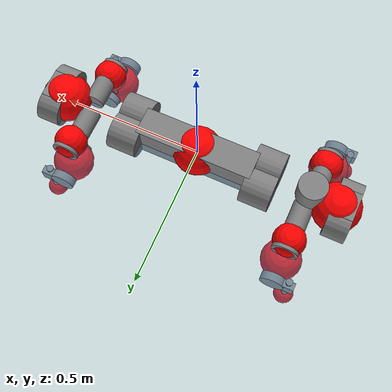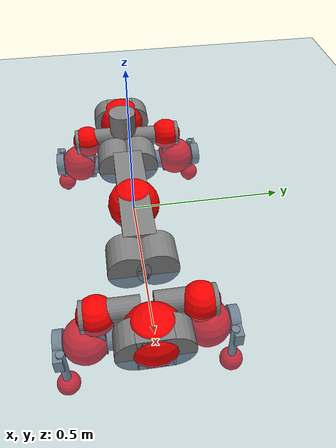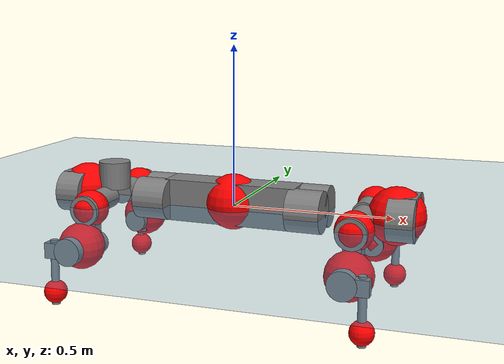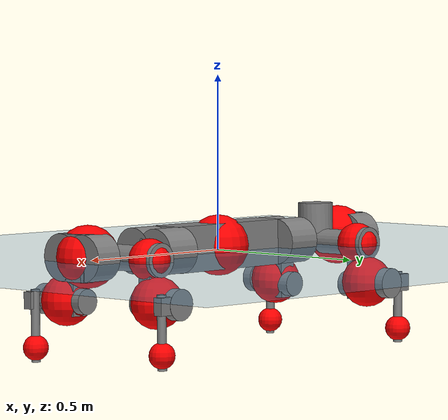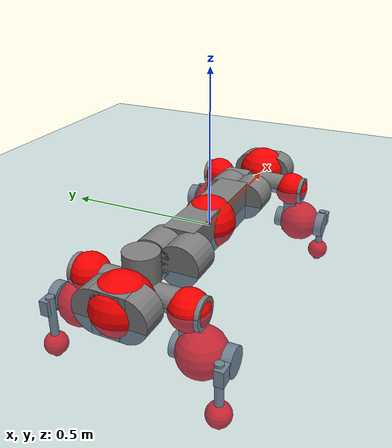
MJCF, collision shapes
<mujoco model="anymal_c">
  <compiler angle="radian" assetdir="assets" balanceinertia="true" inertiafromgeom="false"/>

  <option timestep="0.005" density="1.2" viscosity="2e-05"/>

  <size nkey="1"/>

  <visual>
    <quality shadowsize="8192"/>
    <map shadowclip="0.5"/>
  </visual>

  <default>
    <default class="/">
      <material specular="0" shininess="0.25"/>
      <geom contype="0" conaffinity="0" group="1" solref="-1000 -80"/>
      <site size="0.01 0.005 0.005" group="5"/>
      <general forcelimited="true" forcerange="-80 80" biastype="affine" gainprm="80" biasprm="0 -80 -2"/>
      <default class="anymal_c">
        <joint armature="0.01" damping="0.01" frictionloss="0.1"/>
        <default class="visual">
          <geom type="mesh" group="2"/>
          <default class="visual_zflip"/>
        </default>
        <default class="collision">
          <geom type="cylinder" group="3"/>
          <default class="foot">
            <geom size="0.03 0 0" type="sphere" condim="6" priority="1" friction="0.8 0.02 0.01" solimp="0.015 1 0.03"/>
          </default>
        </default>
      </default>
      <default class="reward_collision_sphere">
        <geom group="5" rgba="1 0 0 1"/>
      </default>
    </default>
  </default>

  <asset>
    <texture type="skybox" colorspace="auto" name="//unnamed_texture_0" builtin="gradient" rgb1="0.95 0.95 0.95" rgb2="0.95 0.95 0.95" width="100" height="600"/>
    <texture type="2d" colorspace="auto" name="texplane" builtin="checker" rgb1="0.345 0.575 0.748" rgb2="0.345 0.575 0.748" markrgb="1 1 1" width="512" height="512"/>
    <texture type="2d" colorspace="linear" name="base" file="base.png"/>
    <texture type="2d" colorspace="linear" name="top_shell" file="top_shell.png"/>
    <texture type="2d" colorspace="linear" name="bottom_shell" file="bottom_shell.png"/>
    <texture type="2d" colorspace="linear" name="remote" file="remote.png"/>
    <texture type="2d" colorspace="linear" name="hatch" file="hatch.png"/>
    <texture type="2d" colorspace="linear" name="handle" file="handle.png"/>
    <texture type="2d" colorspace="linear" name="face" file="face.png"/>
    <texture type="2d" colorspace="linear" name="battery" file="battery.png"/>
    <texture type="2d" colorspace="linear" name="lidar_cage" file="lidar_cage.png"/>
    <texture type="2d" colorspace="linear" name="depth_camera" file="depth_camera.png"/>
    <texture type="2d" colorspace="linear" name="wide_angle_camera" file="wide_angle_camera.png"/>
    <texture type="2d" colorspace="linear" name="lidar" file="lidar.png"/>
    <texture type="2d" colorspace="linear" name="drive" file="drive.png"/>
    <texture type="2d" colorspace="linear" name="hip_l" file="hip_l.png"/>
    <texture type="2d" colorspace="linear" name="shank_l" file="shank_l.png"/>
    <texture type="2d" colorspace="linear" name="foot" file="foot.png"/>
    <texture type="2d" colorspace="linear" name="thigh" file="thigh.png"/>
    <texture type="2d" colorspace="linear" name="shank_r" file="shank_r.png"/>
    <texture type="2d" colorspace="linear" name="hip_r" file="hip_r.png"/>
    <material name="MatPlane" class="/" texture="texplane" texuniform="true" texrepeat="2 2" specular="0.9" shininess="0.5"/>
    <material name="black_plastic" class="/" rgba="0.007 0.007 0.007 1"/>
    <material name="green" class="/" rgba="0.052 0.178 0.033 1"/>
    <material name="red" class="/" rgba="0.178 0.006 0.005 1"/>
    <material name="yellow" class="/" rgba="0.178 0.119 0.006 1"/>
    <material name="lwl" class="/" rgba="0.8 0.8 0.8 1"/>
    <material name="base" class="/" texture="base"/>
    <material name="top_shell" class="/" texture="top_shell"/>
    <material name="bottom_shell" class="/" texture="bottom_shell"/>
    <material name="hip_l" class="/" texture="hip_l"/>
    <material name="thigh" class="/" texture="thigh"/>
    <material name="shank_l" class="/" texture="shank_l"/>
    <material name="foot" class="/" texture="foot"/>
    <material name="hip_r" class="/" texture="hip_r"/>
    <material name="shank" class="/" texture="shank_r"/>
    <material name="hatch" class="/" texture="hatch"/>
    <material name="remote" class="/" texture="remote"/>
    <material name="handle" class="/" texture="handle"/>
    <material name="face" class="/" texture="face"/>
    <material name="depth_camera" class="/" texture="depth_camera"/>
    <material name="wide_angle_camera" class="/" texture="wide_angle_camera"/>
    <material name="battery" class="/" texture="battery"/>
    <material name="lidar_cage" class="/" texture="lidar_cage"/>
    <material name="lidar" class="/" texture="lidar"/>
    <material name="drive" class="/" texture="drive"/>
    <mesh name="base_0" class="/" file="base_0.obj"/>
    <mesh name="base_1" class="/" file="base_1.obj"/>
    <mesh name="base_2" class="/" file="base_2.obj"/>
    <mesh name="base_3" class="/" file="base_3.obj"/>
    <mesh name="base_4" class="/" file="base_4.obj"/>
    <mesh name="base_5" class="/" file="base_5.obj"/>
    <mesh name="top_shell" class="/" file="top_shell.obj"/>
    <mesh name="bottom_shell" class="/" file="bottom_shell.obj"/>
    <mesh name="remote" class="/" file="remote.obj"/>
    <mesh name="handle" class="/" file="handle.obj"/>
    <mesh name="face" class="/" file="face.obj"/>
    <mesh name="wide_angle_camera" class="/" file="wide_angle_camera.obj"/>
    <mesh name="depth_camera" class="/" file="depth_camera.obj"/>
    <mesh name="battery" class="/" file="battery.obj"/>
    <mesh name="lidar_cage" class="/" file="lidar_cage.obj"/>
    <mesh name="lidar" class="/" file="lidar.obj"/>
    <mesh name="drive" class="/" file="drive.obj"/>
    <mesh name="hip_l" class="/" file="hip_l.obj"/>
    <mesh name="thigh" class="/" file="thigh.obj"/>
    <mesh name="shank_l" class="/" file="shank_l.obj"/>
    <mesh name="foot" class="/" file="foot.obj"/>
    <mesh name="hip_r" class="/" file="hip_r.obj"/>
    <mesh name="hatch" class="/" file="hatch.obj"/>
    <mesh name="shank_r" class="/" file="shank_r.obj"/>
  </asset>

  <worldbody>
    <geom name="floor" class="/" size="100 100 0.125" type="plane" group="0" material="MatPlane"/>
    <light name="toplight_shadow" class="/" pos="0 0 5" dir="0.0990148 0.0990148 -0.990148" type="directional" ambient="0.04 0.04 0.04" diffuse="0.55 0.55 0.55" specular="0.12 0.12 0.12"/>
    <light name="toplight_fill" class="/" pos="0 0 5" dir="0.0990148 0.0990148 -0.990148" type="directional" castshadow="false" ambient="0.04 0.04 0.04" diffuse="0.3 0.3 0.3" specular="0.08 0.08 0.08"/>
    <body name="trunk" childclass="anymal_c" pos="-0.00231352 0.000766299 0.014659" quat="0.999977 0.0039247 0.00287399 -0.00477945">
      <inertial pos="0.00130207 -0.0118083 0.0224656" quat="0.548375 0.466179 0.471422 0.509631" mass="6.69915" diaginertia="1.00789 0.0461194 0.00239697"/>
      <joint name="//unnamed_joint_0" type="free" armature="0" damping="0" frictionloss="0"/>
      <geom name="//unnamed_geom_1" class="visual" material="green" mesh="base_0"/>
      <geom name="//unnamed_geom_2" class="visual" material="yellow" mesh="base_1"/>
      <geom name="//unnamed_geom_3" class="visual" material="red" mesh="base_2"/>
      <geom name="//unnamed_geom_4" class="visual" material="black_plastic" mesh="base_3"/>
      <geom name="//unnamed_geom_5" class="visual" material="lwl" mesh="base_4"/>
      <geom name="//unnamed_geom_6" class="visual" material="base" mesh="base_5"/>
      <geom name="trunk_1" class="collision" size="0.210313 0.0507652 0.0652695" type="box"/>
      <geom name="trunk_2" class="collision" size="0.0652695 0.0525782" pos="0.247297 0.0430053 0" quat="0.707107 0 0.707107 0"/>
      <geom name="trunk_3" class="collision" size="0.0652695 0.0525782" pos="-0.247297 0.0430053 0" quat="0.707107 0 0.707107 0"/>
      <geom name="trunk_4" class="collision" size="0.0652695 0.0525782" pos="0.247297 -0.0430053 0" quat="0.707107 0 0.707107 0"/>
      <geom name="trunk_5" class="collision" size="0.0652695 0.0525782" pos="-0.247297 -0.0430053 0" quat="0.707107 0 0.707107 0"/>
      <geom name="//unnamed_geom_12" class="visual" material="top_shell" mesh="top_shell"/>
      <geom name="//unnamed_geom_13" class="visual" material="bottom_shell" mesh="bottom_shell"/>
      <geom name="//unnamed_geom_14" class="visual" material="remote" mesh="remote"/>
      <geom name="//unnamed_geom_15" class="visual" material="handle" mesh="handle"/>
      <geom name="//unnamed_geom_16" class="visual" pos="0.471286 0 0" quat="1 0 0 0" material="face" mesh="face"/>
      <geom name="trunk_6" class="collision" size="0.0398869 0.0507652 0.0652695" pos="0.533821 0 0" type="box"/>
      <geom name="//unnamed_geom_18" class="collision" size="0.0652695 0.0398869" pos="0.533821 0.0430053 0" quat="0.707107 0 0.707107 0"/>
      <geom name="//unnamed_geom_19" class="collision" size="0.0652695 0.0398869" pos="0.533821 -0.0430053 0" quat="0.707107 0 0.707107 0"/>
      <geom name="//unnamed_geom_20" class="visual" pos="0.524866 0 -0.00697271" quat="0.965926 0 0.258819 0" material="depth_camera" mesh="depth_camera"/>
      <geom name="//unnamed_geom_21" class="visual" pos="0.58328 0 0.00635163" material="wide_angle_camera" mesh="wide_angle_camera"/>
      <geom name="//unnamed_geom_22" class="visual_zflip" pos="-0.471286 0 0" quat="0 0 0 1" material="face" mesh="face"/>
      <geom name="trunk_7" class="collision" size="0.0398869 0.0507652 0.0652695" pos="-0.533821 0 0" quat="0 0 0 1" type="box"/>
      <geom name="//unnamed_geom_24" class="collision" size="0.0652695 0.0398869" pos="-0.533821 -0.0430053 0" quat="0 -0.707107 0 0.707107"/>
      <geom name="//unnamed_geom_25" class="collision" size="0.0652695 0.0398869" pos="-0.533821 0.0430053 0" quat="0 -0.707107 0 0.707107"/>
      <geom name="//unnamed_geom_26" class="visual" pos="-0.524866 0 -0.00697271" quat="0 -0.258819 0 0.965926" material="depth_camera" mesh="depth_camera"/>
      <geom name="//unnamed_geom_27" class="visual_zflip" pos="-0.58328 0 0.00635163" quat="0 0 0 1" material="wide_angle_camera" mesh="wide_angle_camera"/>
      <geom name="//unnamed_geom_28" class="visual" material="battery" mesh="battery"/>
      <geom name="//unnamed_geom_29" class="visual" pos="0 0.0400865 0.0177422" quat="0.683013 -0.183013 0.183013 0.683013" material="depth_camera" mesh="depth_camera"/>
      <geom name="//unnamed_geom_30" class="visual" pos="0 -0.0400865 0.0177422" quat="0.683013 0.183013 0.183013 -0.683013" material="depth_camera" mesh="depth_camera"/>
      <geom name="//unnamed_geom_31" class="visual" pos="-0.413867 0 0.0311854" quat="1 0 0 0" material="lidar_cage" mesh="lidar_cage"/>
      <geom name="trunk_8" class="collision" size="0.0507652 0.043513" pos="-0.413867 0 0.0566428"/>
      <geom name="//unnamed_geom_33" class="visual" pos="-0.413867 -0.00020533 0.0603341" quat="0.707107 0 0 -0.707107" material="lidar" mesh="lidar"/>
      <geom name="//unnamed_geom_34" class="visual" pos="0.340986 0.0638261 3.27875e-09" quat="0.258819 0.965926 0 0" material="drive" mesh="drive"/>
      <geom name="//unnamed_geom_35" class="visual" pos="0.340986 -0.0638261 -3.27875e-09" quat="0.258819 -0.965926 0 0" material="drive" mesh="drive"/>
      <geom name="//unnamed_geom_36" class="visual" pos="-0.340986 0.0638261 -3.27875e-09" quat="0 0 0.965926 -0.258819" material="drive" mesh="drive"/>
      <geom name="//unnamed_geom_37" class="visual" pos="-0.340986 -0.0638261 3.27875e-09" quat="0 0 -0.965926 -0.258819" material="drive" mesh="drive"/>
      <geom name="//unnamed_geom_38" class="visual" pos="0.131892 0 0.0309732" quat="1 0 0 0" material="hatch" mesh="hatch"/>
      <geom name="//unnamed_geom_39" class="reward_collision_sphere" size="0.0870261"/>
      <geom name="//unnamed_geom_40" class="reward_collision_sphere" size="0.0870261" pos="0.511649 0 0"/>
      <geom name="//unnamed_geom_41" class="reward_collision_sphere" size="0.0870261" pos="-0.511649 0 0"/>
      <site name="imu" pos="0.265752 -0.0384665 0.0757639" size="0.00725217"/>
      <camera name="track" pos="0 -1.22872 0" quat="0.707107 0.707107 0 0" mode="trackcom"/>
      <camera name="ego_camera" pos="0.511649 0 -0.0169716" quat="-0.5 -0.5 0.5 0.5"/>
      <body name="LF_HIP" pos="0.340511 0.0582359 -0.00658373" quat="0.258667 0.965967 0.000174776 -0.000369747">
        <inertial pos="0.0775273 -0.00813372 0.0106782" quat="-0.186148 0.674419 -0.131221 0.702345" mass="1.15871" diaginertia="0.0106854 0.000505787 4.97727e-05"/>
        <joint name="LF_HAA" pos="0 0 0" axis="0.998068 -0.015727 -0.0601152" stiffness="0.0525403" range="-0.73066 0.327181" armature="0.0074466" damping="0.0604735" frictionloss="0.0433031"/>
        <geom name="//unnamed_geom_42" class="visual" pos="0 0.000192874 -3.16794e-05" quat="0.258819 -0.965926 0 0" material="hip_l" mesh="hip_l"/>
        <geom name="//unnamed_geom_43" class="visual" pos="0.0681062 -0.0755764 -0.0422282" quat="0.183013 -0.683013 0.683013 0.183013" material="drive" mesh="drive"/>
        <geom name="//unnamed_geom_44" class="collision" size="0.0362609 0.0507652" pos="0.0681062 -0.00734765 -0.00292973" quat="-0.353553 -0.612372 0.612372 -0.353553"/>
        <body name="LF_THIGH" pos="0.0796557 -0.0517903 -0.0296063" quat="0.18312 -0.683047 0.683032 0.182707">
          <inertial pos="0.0349774 0.000740859 -0.103283" quat="0.994047 0.0191757 -0.0703975 0.0809185" mass="1.28591" diaginertia="0.0634492 0.00301896 7.62034e-05"/>
          <joint name="LF_HFE" pos="0 0 0" axis="0.999998 -0.000377764 0.0017316" stiffness="0.0258712" range="-2.97301 3.12643" armature="0.0105309" damping="0" frictionloss="0.0737511"/>
          <geom name="//unnamed_geom_45" class="visual" pos="0.0103984 1.63855e-05 0" quat="0.707107 0 0 -0.707107" material="thigh" mesh="thigh"/>
          <geom name="//unnamed_geom_46" class="collision" size="0.0471391 0.0290087" pos="0.0454799 0 0" quat="0.5 0.5 -0.5 -0.5"/>
          <geom name="//unnamed_geom_47" class="collision" size="0.0271956 0.0217565 0.102483" pos="0.03411 0 -0.0599582" quat="0.707107 0 0 -0.707107" type="box"/>
          <geom name="//unnamed_geom_48" class="visual" pos="0.114041 0 -0.120923" quat="1 0 0 0" material="drive" mesh="drive"/>
          <geom name="//unnamed_geom_49" class="collision" size="0.0362609 0.0507652" pos="0.0344511 0 -0.120923" quat="0.707107 0 0.707107 0"/>
          <geom name="//unnamed_geom_50" class="reward_collision_sphere" size="0.0580174" pos="0.028425 0 0"/>
          <body name="LF_SHANK" pos="0.10955 0.00201596 -0.116603" quat="1 0.000168684 6.63774e-05 0.000150821">
            <inertial pos="0.0220296 -0.0236554 -0.0327972" quat="0.993141 -0.114822 -0.00160117 -0.0220118" mass="0.227238" diaginertia="0.0226678 0.000794853 1.53366e-05"/>
            <joint name="LF_KFE" pos="0 0 0" axis="1 0.000340903 0.000665643" stiffness="0.00676023" range="-2.82876 2.96578" armature="0.00941419" damping="0.0271438" frictionloss="0.0179225"/>
            <geom name="//unnamed_geom_51" class="visual" pos="0.0033907 0.0180794 0" quat="0.707107 0 0 -0.707107" material="shank_l" mesh="shank_l"/>
            <geom name="LF_kfe_act" class="collision" size="0.043513 0.0145043" pos="0.02274 0 0" quat="0.5 0.5 -0.5 -0.5"/>
            <geom name="//unnamed_geom_53" class="collision" size="0.0416993 0.0244761 0.0137791" pos="0.02274 -0.0353252 0" quat="0.5 0.5 -0.5 -0.5" type="box"/>
            <geom name="//unnamed_geom_54" class="visual" pos="0.014837 -0.0482069 -0.143398" quat="0.382683 0 0 -0.92388" material="foot" mesh="foot"/>
            <geom name="LF_calf" class="collision" size="0.0126913 0.102438" pos="0.0148378 -0.0540331 -0.0716988" quat="0.707107 0 0 -0.707107"/>
            <geom name="LF_foot" class="foot" size="0.0289877" pos="0.0148378 -0.0540331 -0.133851" quat="0.707107 0 0 -0.707107"/>
            <geom name="//unnamed_geom_57" class="reward_collision_sphere" size="0.0725217" pos="-0.0568499 0 0"/>
            <geom name="//unnamed_geom_58" class="reward_collision_sphere" size="0.0362609" pos="0.0148378 -0.0540331 -0.133851"/>
            <site name="LF_foot" class="foot" pos="0.0148378 -0.0540331 -0.133851" quat="0.707107 0 0 -0.707107" size="0.00725217"/>
          </body>
        </body>
      </body>
      <body name="RF_HIP" pos="0.34941 -0.0654443 -0.00463007" quat="0.26158 -0.965157 0.000907819 -0.00690215">
        <inertial pos="0.0708876 0.0102159 -0.00567582" quat="0.127874 0.731446 0.111257 0.660498" mass="0.919776" diaginertia="0.0113875 0.000458789 4.66583e-05"/>
        <joint name="RF_HAA" pos="0 0 0" axis="0.999148 -0.0396854 0.0113461" stiffness="0.0597143" range="-0.199261 0.881417" armature="0.00586614" damping="0.0545585" frictionloss="0.0381041"/>
        <geom name="//unnamed_geom_59" class="visual" pos="0 -0.000192873 -3.16793e-05" quat="0.258819 0.965926 0 0" material="hip_r" mesh="hip_r"/>
        <geom name="//unnamed_geom_60" class="visual" pos="0.0681062 0.0755764 -0.0422282" quat="0.183013 0.683013 0.683013 -0.183013" material="drive" mesh="drive"/>
        <geom name="//unnamed_geom_61" class="collision" size="0.0362609 0.0507652" pos="0.0681062 0.00734765 -0.00292973" quat="-0.353553 0.612372 0.612372 0.353553"/>
        <body name="RF_THIGH" pos="0.068389 0.0533434 -0.0163641" quat="0.181771 0.682597 0.684527 -0.180122">
          <inertial pos="0.0425026 0.000248434 -0.0988051" quat="0.993879 0.0141973 -0.0804663 0.0743496" mass="0.995963" diaginertia="0.0563511 0.00295646 5.18347e-05"/>
          <joint name="RF_HFE" pos="0 0 0" axis="0.999998 -0.00122927 0.00161837" range="-3.10713 3.31139" armature="0.0101457" damping="0.0810746" frictionloss="0.113707"/>
          <geom name="//unnamed_geom_62" class="visual" pos="0.0103984 1.63855e-05 0" quat="0.707107 0 0 -0.707107" material="thigh" mesh="thigh"/>
          <geom name="//unnamed_geom_63" class="collision" size="0.0471391 0.0290087" pos="0.0454799 0 0" quat="0.5 0.5 0.5 0.5"/>
          <geom name="//unnamed_geom_64" class="collision" size="0.0271956 0.0217565 0.102483" pos="0.03411 0 -0.0599582" quat="0.707107 0 0 0.707107" type="box"/>
          <geom name="//unnamed_geom_65" class="visual" pos="0.114041 0 -0.120923" quat="1 0 0 0" material="drive" mesh="drive"/>
          <geom name="//unnamed_geom_66" class="collision" size="0.0362609 0.0507652" pos="0.0344511 0 -0.120923" quat="0.707107 0 0.707107 0"/>
          <geom name="//unnamed_geom_67" class="reward_collision_sphere" size="0.0580174" pos="0.028425 0 0"/>
          <body name="RF_SHANK" pos="0.128438 -0.00229239 -0.120267" quat="0.999998 0.000388566 0.000528933 0.00174351">
            <inertial pos="0.0107175 0.0509339 -0.0456427" quat="0.9981 0.0422395 -0.0134506 0.0427875" mass="0.271582" diaginertia="0.022852 0.000794812 2.00689e-05"/>
            <joint name="RF_KFE" pos="0 0 0" axis="0.999997 0.000289573 -0.00242662" stiffness="0.0191927" range="-3.12859 3.18575" armature="0.00757805" damping="0.0554336" frictionloss="0.100086"/>
            <geom name="//unnamed_geom_68" class="visual" pos="0.00339068 -0.0180793 0" quat="0.707107 0 0 0.707107" material="shank" mesh="shank_r"/>
            <geom name="RF_kfe_act" class="collision" size="0.043513 0.0145043" pos="0.02274 0 0" quat="0.5 0.5 0.5 0.5"/>
            <geom name="//unnamed_geom_70" class="collision" size="0.0416993 0.0244761 0.0137791" pos="0.02274 0.0353252 0" quat="0.5 0.5 0.5 0.5" type="box"/>
            <geom name="//unnamed_geom_71" class="visual" pos="0.0148387 0.0482069 -0.143398" quat="0.382683 0 0 0.92388" material="foot" mesh="foot"/>
            <geom name="RF_calf" class="collision" size="0.0126913 0.102438" pos="0.0148378 0.0540331 -0.0716988" quat="0.707107 0 0 0.707107"/>
            <geom name="RF_foot" class="foot" size="0.0323841" pos="0.0148378 0.0540331 -0.133851" quat="0.707107 0 0 0.707107"/>
            <geom name="//unnamed_geom_74" class="reward_collision_sphere" size="0.0725217" pos="-0.0568499 0 0"/>
            <geom name="//unnamed_geom_75" class="reward_collision_sphere" size="0.0362609" pos="0.0148378 0.0540331 -0.133851"/>
            <site name="RF_foot" class="foot" pos="0.0148378 0.0540331 -0.133851" quat="0.707107 0 0 0.707107" size="0.00725217"/>
          </body>
        </body>
      </body>
      <body name="LH_HIP" pos="-0.340696 0.0738471 -0.0102103" quat="0.00225389 0.000544797 0.965602 -0.260014">
        <inertial pos="0.0697465 0.0225096 0.0112134" quat="0.109796 0.686425 0.110429 0.710332" mass="1.20471" diaginertia="0.0134986 0.000438732 5.70933e-05"/>
        <joint name="LH_HAA" pos="0 0 0" axis="0.998061 0.0410744 -0.0467664" range="-0.238712 0.451893" armature="0.00278583" damping="0.0118846" frictionloss="0.0688219"/>
        <geom name="//unnamed_geom_76" class="visual" pos="0 -0.000192873 -3.16793e-05" quat="-0.258819 -0.965926 0 0" material="hip_r" mesh="hip_r"/>
        <geom name="//unnamed_geom_77" class="visual" pos="0.0681062 0.0755764 -0.0422282" quat="0.183013 0.683013 0.683013 -0.183013" material="drive" mesh="drive"/>
        <geom name="//unnamed_geom_78" class="collision" size="0.0362609 0.0507652" pos="0.0681062 0.00734765 -0.00292973" quat="-0.353553 0.612372 0.612372 0.353553"/>
        <body name="LH_THIGH" pos="0.0677507 0.0570096 -0.0320735" quat="0.188142 0.681992 0.682808 -0.182378">
          <inertial pos="0.0196089 0.0105948 -0.0889813" quat="0.992891 -0.00556859 -0.0805587 0.0874438" mass="0.947441" diaginertia="0.0381819 0.00202715 4.0329e-05"/>
          <joint name="LH_HFE" pos="0 0 0" axis="0.997078 -0.0172655 0.0744164" range="-2.95155 3.12234" armature="0.00634341" damping="0.0826574" frictionloss="0.0466539"/>
          <geom name="//unnamed_geom_79" class="visual" pos="0.0103984 1.63855e-05 0" quat="0.707107 0 0 -0.707107" material="thigh" mesh="thigh"/>
          <geom name="//unnamed_geom_80" class="collision" size="0.0471391 0.0290087" pos="0.0454799 0 0" quat="0.5 0.5 -0.5 -0.5"/>
          <geom name="//unnamed_geom_81" class="collision" size="0.0271956 0.0217565 0.102483" pos="0.03411 0 -0.0599582" quat="0.707107 0 0 -0.707107" type="box"/>
          <geom name="//unnamed_geom_82" class="visual" pos="0.114041 0 -0.120923" quat="1 0 0 0" material="drive" mesh="drive"/>
          <geom name="//unnamed_geom_83" class="collision" size="0.0362609 0.0507652" pos="0.0344511 0 -0.120923" quat="0.707107 0 0.707107 0"/>
          <geom name="//unnamed_geom_84" class="reward_collision_sphere" size="0.0580174" pos="0.028425 0 0"/>
          <body name="LH_SHANK" pos="0.122973 0.000435059 -0.11172" quat="0.999984 -0.00298536 0.000607029 0.00474086">
            <inertial pos="0.0205146 0.0275528 -0.0193042" quat="0.984291 0.164148 -0.0324576 0.0563383" mass="0.250847" diaginertia="0.0220991 0.00100283 1.58968e-05"/>
            <joint name="LH_KFE" pos="0 0 0" axis="1 4.03565e-05 0.00033354" stiffness="0.0150547" range="-3.20126 3.45553" armature="0.00273881" damping="0.0778579" frictionloss="0.0688037"/>
            <geom name="//unnamed_geom_85" class="visual" pos="0.00339068 -0.0180793 0" quat="-0.707107 0 0 -0.707107" material="shank" mesh="shank_r"/>
            <geom name="LH_kfe_act" class="collision" size="0.043513 0.0145043" pos="0.02274 0 0" quat="0.5 0.5 -0.5 -0.5"/>
            <geom name="//unnamed_geom_87" class="collision" size="0.0416993 0.0244761 0.0137791" pos="0.02274 0.0353252 0" quat="0.5 0.5 -0.5 -0.5" type="box"/>
            <geom name="//unnamed_geom_88" class="visual" pos="0.0148387 0.0482069 -0.143398" quat="-0.382683 0 0 -0.92388" material="foot" mesh="foot"/>
            <geom name="LH_calf" class="collision" size="0.0126913 0.102438" pos="0.0148378 0.0540331 -0.0716988" quat="0.707107 0 0 -0.707107"/>
            <geom name="LH_foot" class="foot" size="0.0167335" pos="0.0148378 0.0540331 -0.133851" quat="0.707107 0 0 -0.707107"/>
            <geom name="//unnamed_geom_91" class="reward_collision_sphere" size="0.0725217" pos="-0.0568499 0 0"/>
            <geom name="//unnamed_geom_92" class="reward_collision_sphere" size="0.0362609" pos="0.0148378 0.0540331 -0.133851"/>
            <site name="LH_foot" class="foot" pos="0.0148378 0.0540331 -0.133851" quat="0.707107 0 0 -0.707107" size="0.00725217"/>
          </body>
        </body>
      </body>
      <body name="RH_HIP" pos="-0.356605 -0.0653257 -0.0129204" quat="0.000544088 0.0013202 -0.966013 -0.25849">
        <inertial pos="0.0760411 -0.000474184 -0.00407432" quat="-0.0931715 0.727461 -0.183555 0.654543" mass="1.03837" diaginertia="0.00750533 0.000351357 3.32144e-05"/>
        <joint name="RH_HAA" pos="0 0 0" axis="0.996898 -0.0435956 -0.0655263" range="-0.574493 0.496177" armature="0.00732918" damping="0.0232952" frictionloss="0.0162096"/>
        <geom name="//unnamed_geom_93" class="visual" pos="0 0.000192874 -3.16794e-05" quat="-0.258819 0.965926 0 0" material="hip_l" mesh="hip_l"/>
        <geom name="//unnamed_geom_94" class="visual" pos="0.0681062 -0.0755764 -0.0422282" quat="-0.183013 0.683013 -0.683013 -0.183013" material="drive" mesh="drive"/>
        <geom name="//unnamed_geom_95" class="collision" size="0.0362609 0.0507652" pos="0.0681062 -0.00734765 -0.00292973" quat="0.353553 0.612372 -0.612372 0.353553"/>
        <body name="RH_THIGH" pos="0.0703159 -0.0496846 -0.0122254" quat="-0.182865 0.683305 -0.6825 -0.183978">
          <inertial pos="0.0282977 0.00813028 -0.0912878" quat="0.991206 -0.0390029 -0.0595822 0.111531" mass="1.48581" diaginertia="0.0517557 0.00277142 5.81558e-05"/>
          <joint name="RH_HFE" pos="0 0 0" axis="0.999399 -0.0149995 0.0312633" range="-3.12769 3.36253" armature="0.00796417" damping="0.0322707" frictionloss="0.0890958"/>
          <geom name="//unnamed_geom_96" class="visual" pos="0.0103984 1.63855e-05 0" quat="0.707107 0 0 -0.707107" material="thigh" mesh="thigh"/>
          <geom name="//unnamed_geom_97" class="collision" size="0.0471391 0.0290087" pos="0.0454799 0 0" quat="0.5 0.5 0.5 0.5"/>
          <geom name="//unnamed_geom_98" class="collision" size="0.0271956 0.0217565 0.102483" pos="0.03411 0 -0.0599582" quat="0.707107 0 0 0.707107" type="box"/>
          <geom name="//unnamed_geom_99" class="visual" pos="0.114041 0 -0.120923" quat="1 0 0 0" material="drive" mesh="drive"/>
          <geom name="//unnamed_geom_100" class="collision" size="0.0362609 0.0507652" pos="0.0344511 0 -0.120923" quat="0.707107 0 0.707107 0"/>
          <geom name="//unnamed_geom_101" class="reward_collision_sphere" size="0.0580174" pos="0.028425 0 0"/>
          <body name="RH_SHANK" pos="0.1278 -0.0109524 -0.110315" quat="0.999969 0.00143262 -0.00737026 -0.00247956">
            <inertial pos="0.000816547 -0.037855 -0.033634" quat="0.988588 -0.120375 -0.0283834 -0.0860106" mass="0.207862" diaginertia="0.0177727 0.000645396 1.59984e-05"/>
            <joint name="RH_KFE" pos="0 0 0" axis="0.997137 0.0750108 0.00953876" stiffness="0.0686906" range="-3.39078 3.2279" armature="0.00742256" damping="0.0721245" frictionloss="0.0896284"/>
            <geom name="//unnamed_geom_102" class="visual" pos="0.0033907 0.0180794 0" quat="0.707107 0 0 -0.707107" material="shank_l" mesh="shank_l"/>
            <geom name="RH_kfe_act" class="collision" size="0.043513 0.0145043" pos="0.02274 0 0" quat="0.5 0.5 0.5 0.5"/>
            <geom name="//unnamed_geom_104" class="collision" size="0.0416993 0.0244761 0.0137791" pos="0.02274 -0.0353252 0" quat="0.5 0.5 0.5 0.5" type="box"/>
            <geom name="//unnamed_geom_105" class="visual" pos="0.014837 -0.0482069 -0.143398" quat="0.382683 0 0 -0.92388" material="foot" mesh="foot"/>
            <geom name="RH_calf" class="collision" size="0.0126913 0.102438" pos="0.0148378 -0.0540331 -0.0716988" quat="0.707107 0 0 0.707107"/>
            <geom name="RH_foot" class="foot" size="0.0255451" pos="0.0148378 -0.0540331 -0.133851" quat="0.707107 0 0 0.707107"/>
            <geom name="//unnamed_geom_108" class="reward_collision_sphere" size="0.0725217" pos="-0.0568499 0 0"/>
            <geom name="//unnamed_geom_109" class="reward_collision_sphere" size="0.0362609" pos="0.0148378 -0.0540331 -0.133851"/>
            <site name="RH_foot" class="foot" pos="0.0148378 -0.0540331 -0.133851" quat="0.707107 0 0 0.707107" size="0.00725217"/>
          </body>
        </body>
      </body>
    </body>
  </worldbody>

  <contact>
    <pair class="/" geom1="floor" geom2="LF_foot" name="//unnamed_contact_0"/>
    <pair class="/" geom1="floor" geom2="RF_foot" name="//unnamed_contact_1"/>
    <pair class="/" geom1="floor" geom2="LH_foot" name="//unnamed_contact_2"/>
    <pair class="/" geom1="floor" geom2="RH_foot" name="//unnamed_contact_3"/>
  </contact>

  <actuator>
    <general name="LF_HAA" class="/" joint="LF_HAA" forcerange="-57.8897 57.8897" gainprm="52.8508" biasprm="0 -52.8508 -1.69644"/>
    <general name="LF_HFE" class="/" joint="LF_HFE" forcerange="-50.9092 50.9092" gainprm="52.8508" biasprm="0 -52.8508 -1.69644"/>
    <general name="LF_KFE" class="/" joint="LF_KFE" forcerange="-39.472 39.472" gainprm="52.8508" biasprm="0 -52.8508 -1.69644"/>
    <general name="RF_HAA" class="/" joint="RF_HAA" forcerange="-64.4885 64.4885" gainprm="52.8508" biasprm="0 -52.8508 -1.69644"/>
    <general name="RF_HFE" class="/" joint="RF_HFE" forcerange="-40.1376 40.1376" gainprm="52.8508" biasprm="0 -52.8508 -1.69644"/>
    <general name="RF_KFE" class="/" joint="RF_KFE" forcerange="-56.7855 56.7855" gainprm="52.8508" biasprm="0 -52.8508 -1.69644"/>
    <general name="LH_HAA" class="/" joint="LH_HAA" forcerange="-58.8307 58.8307" gainprm="52.8508" biasprm="0 -52.8508 -1.69644"/>
    <general name="LH_HFE" class="/" joint="LH_HFE" forcerange="-89.5982 89.5982" gainprm="52.8508" biasprm="0 -52.8508 -1.69644"/>
    <general name="LH_KFE" class="/" joint="LH_KFE" forcerange="-29.4631 29.4631" gainprm="52.8508" biasprm="0 -52.8508 -1.69644"/>
    <general name="RH_HAA" class="/" joint="RH_HAA" forcerange="-58.6513 58.6513" gainprm="52.8508" biasprm="0 -52.8508 -1.69644"/>
    <general name="RH_HFE" class="/" joint="RH_HFE" forcerange="-70.6552 70.6552" gainprm="52.8508" biasprm="0 -52.8508 -1.69644"/>
    <general name="RH_KFE" class="/" joint="RH_KFE" forcerange="-38.5709 38.5709" gainprm="52.8508" biasprm="0 -52.8508 -1.69644"/>
  </actuator>

  <sensor>
    <gyro site="imu" name="imu_angular_velocity"/>
    <velocimeter site="imu" name="imu_linear_velocity"/>
    <framelinvel objtype="site" objname="LF_foot" name="LF_foot_global_linear_velocity"/>
    <framelinvel objtype="site" objname="RF_foot" name="RF_foot_global_linear_velocity"/>
    <framelinvel objtype="site" objname="LH_foot" name="LH_foot_global_linear_velocity"/>
    <framelinvel objtype="site" objname="RH_foot" name="RH_foot_global_linear_velocity"/>
  </sensor>

  <keyframe>
    <key name="home" qpos="0 0 0.55 1 0 0 0 0 0.4 -0.8 0 -0.4 0.8 0 -0.4 0.8 0 0.4 -0.8"/>
  </keyframe>
</mujoco>
